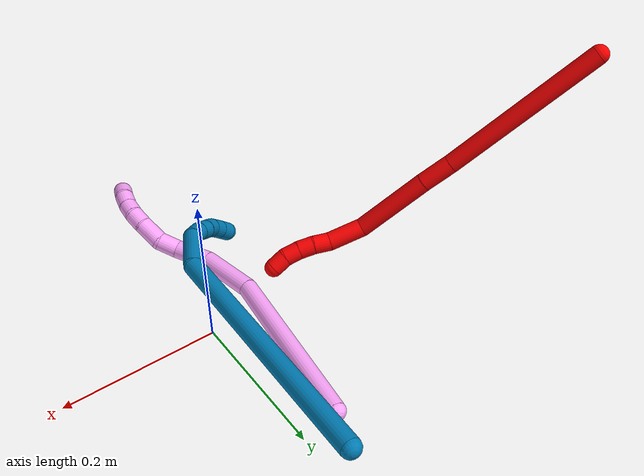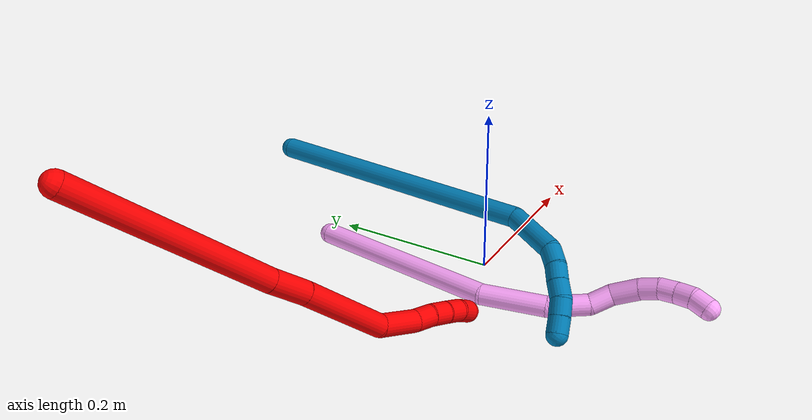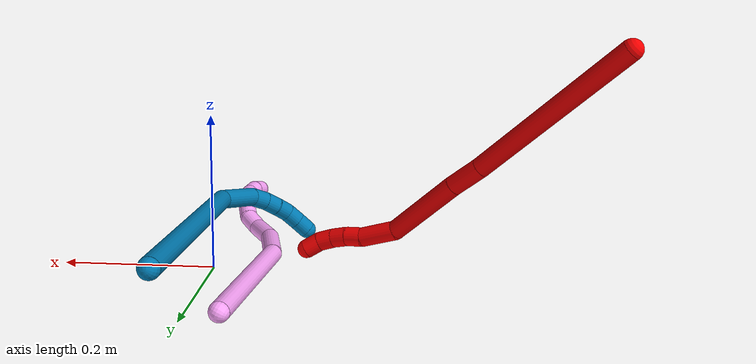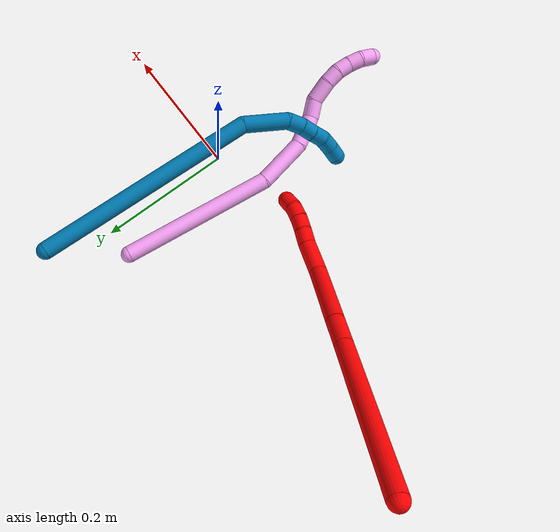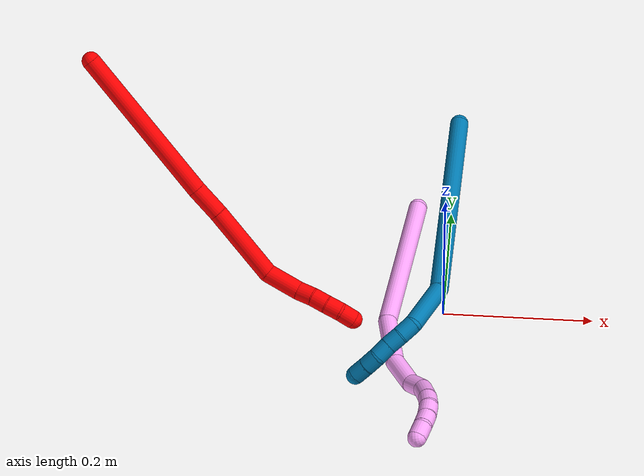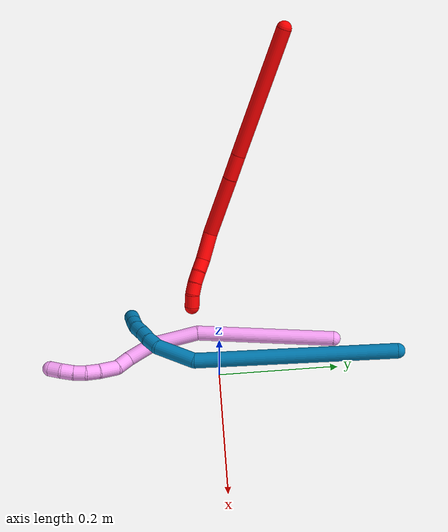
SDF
<sdf version="1.7">
 <world name="default">
  <model name="photoneo_s_sensor">
   <static>1</static>
   <pose>0 0 2 1.57079 1.57079 3.14159</pose>
   <link name="link">
    <inertial><mass>0.1</mass></inertial>
    <sensor name="sensor" type="depth">
     <update_rate>30</update_rate>
     <camera>
      <horizontal_fov>1.22</horizontal_fov>
      <image><width>1920</width><height>1200</height><format>B8G8R8</format></image>
      <clip><near>0.1</near><far>4</far></clip>
      <depth_camera><output>points</output></depth_camera>
     </camera>
     <plugin name="camera_plugin" filename="libgazebo_ros_depth_camera.so">
      <baseline>0.2</baseline>
      <alwaysOn>1</alwaysOn>
      <updateRate>0.0</updateRate>
      <cameraName>camera_ir</cameraName>
      <imageTopicName>/camera/color/image_raw</imageTopicName>
      <cameraInfoTopicName>/camera/color/camera_info</cameraInfoTopicName>
      <depthImageTopicName>/camera/depth/image_raw</depthImageTopicName>
      <depthImageCameraInfoTopicName>/camera/depth/camera_info</depthImageCameraInfoTopicName>
      <pointCloudTopicName>/camera/depth/points</pointCloudTopicName>
      <frameName>fr_optical</frameName>
      <pointCloudCutoff>0.1</pointCloudCutoff>
      <pointCloudCutoffMax>2.0</pointCloudCutoffMax>
      <distortionK1>0</distortionK1>
      <distortionK2>0</distortionK2>
      <distortionK3>0</distortionK3>
      <distortionT1>0</distortionT1>
      <distortionT2>0</distortionT2>
      <CxPrime>0</CxPrime>
      <Cx>0</Cx>
      <Cy>0</Cy>
      <focalLength>0</focalLength>
      <hackBaseline>0</hackBaseline>
     </plugin>
    </sensor>
   </link>
  </model>
  <model name="bin">
   <static>1</static>
   <link name="bottom">
    <collision name="collision-bottom">
     <pose>0 0 -0.01 0 -0 0</pose>
     <geometry><box><size>0.8 0.6 0.02</size></box></geometry>
     <surface>
      <friction><ode><mu>100</mu><mu2>100</mu2></ode></friction>
      <contact><collide_bitmask>65535</collide_bitmask></contact>
     </surface>
    </collision>
   </link>
   <link name="west_wall">
    <collision name="collision-west_wall">
     <pose>-0.41 0 0.1 0 -0 0</pose>
     <geometry><box><size>0.02 0.6 0.2</size></box></geometry>
     <surface>
      <friction><ode><mu>100</mu><mu2>100</mu2></ode></friction>
      <contact><collide_bitmask>65535</collide_bitmask></contact>
     </surface>
    </collision>
   </link>
   <link name="east_wall">
    <collision name="collision-east_wall">
     <pose>0.41 0 0.1 0 -0 0</pose>
     <geometry><box><size>0.02 0.6 0.2</size></box></geometry>
     <surface>
      <friction><ode><mu>100</mu><mu2>100</mu2></ode></friction>
      <contact><collide_bitmask>65535</collide_bitmask></contact>
     </surface>
    </collision>
   </link>
   <link name="south_wall">
    <collision name="collision-south_wall">
     <pose>0 -0.31 0.1 0 -0 0</pose>
     <geometry><box><size>0.8 0.02 0.2</size></box></geometry>
     <surface>
      <friction><ode><mu>100</mu><mu2>100</mu2></ode></friction>
      <contact><collide_bitmask>65535</collide_bitmask></contact>
     </surface>
    </collision>
   </link>
   <link name="north_wall">
    <collision name="collision-north_wall">
     <pose>0 0.31 0.1 0 -0 0</pose>
     <geometry><box><size>0.8 0.02 0.2</size></box></geometry>
     <surface>
      <friction><ode><mu>100</mu><mu2>100</mu2></ode></friction>
      <contact><collide_bitmask>65535</collide_bitmask></contact>
     </surface>
    </collision>
   </link>
  </model>
  <model name="2">
   <static>0</static>
   <link name="2">
    <collision name="collision-cylinder-e_1_1_4">
     <pose>0.000165 -3.2e-05 -0.110597 3.1413 0.00149 2.75802</pose>
     <geometry><cylinder><radius>0.0125</radius><length>0.221195</length></cylinder></geometry>
     <surface>
      <friction><ode><mu>1.16</mu><mu2>1.16</mu2><slip1>0</slip1><slip2>0</slip2></ode></friction>
      <contact><ode><kp>1e+06</kp><kd>1</kd><max_vel>0</max_vel><min_depth>0.001</min_depth></ode></contact>
     </surface>
    </collision>
    <visual name="visual-cylinder-e_1_1_4">
     <pose>0.000165 -3.2e-05 -0.110597 3.1413 0.00149 2.75802</pose>
     <geometry><cylinder><radius>0.0125</radius><length>0.221195</length></cylinder></geometry>
     <material><ambient>1 0 0 1</ambient></material>
    </visual>
    <collision name="collision-cylinder-e_2_4_5">
     <pose>0.001289 -0.001147 -0.242549 3.09092 0.044843 1.44883</pose>
     <geometry><cylinder><radius>0.0125</radius><length>0.042808</length></cylinder></geometry>
     <surface>
      <friction><ode><mu>1.16</mu><mu2>1.16</mu2><slip1>0</slip1><slip2>0</slip2></ode></friction>
      <contact><ode><kp>1e+06</kp><kd>1</kd><max_vel>0</max_vel><min_depth>0.001</min_depth></ode></contact>
     </surface>
    </collision>
    <visual name="visual-cylinder-e_2_4_5">
     <pose>0.001289 -0.001147 -0.242549 3.09092 0.044843 1.44883</pose>
     <geometry><cylinder><radius>0.0125</radius><length>0.042808</length></cylinder></geometry>
     <material><ambient>1 0 0 1</ambient></material>
    </visual>
    <collision name="collision-cylinder-e_3_5_6">
     <pose>0.002516 -0.002469 -0.316014 3.13701 0.005136 1.68363</pose>
     <geometry><cylinder><radius>0.0125</radius><length>0.104222</length></cylinder></geometry>
     <surface>
      <friction><ode><mu>1.16</mu><mu2>1.16</mu2><slip1>0</slip1><slip2>0</slip2></ode></friction>
      <contact><ode><kp>1e+06</kp><kd>1</kd><max_vel>0</max_vel><min_depth>0.001</min_depth></ode></contact>
     </surface>
    </collision>
    <visual name="visual-cylinder-e_3_5_6">
     <pose>0.002516 -0.002469 -0.316014 3.13701 0.005136 1.68363</pose>
     <geometry><cylinder><radius>0.0125</radius><length>0.104222</length></cylinder></geometry>
     <material><ambient>1 0 0 1</ambient></material>
    </visual>
    <collision name="collision-cylinder-e_4_6_7">
     <pose>0.009808 -0.009722 -0.389852 2.82933 0.298461 1.5249</pose>
     <geometry><cylinder><radius>0.0125</radius><length>0.047777</length></cylinder></geometry>
     <surface>
      <friction><ode><mu>1.16</mu><mu2>1.16</mu2><slip1>0</slip1><slip2>0</slip2></ode></friction>
      <contact><ode><kp>1e+06</kp><kd>1</kd><max_vel>0</max_vel><min_depth>0.001</min_depth></ode></contact>
     </surface>
    </collision>
    <visual name="visual-cylinder-e_4_6_7">
     <pose>0.009808 -0.009722 -0.389852 2.82933 0.298461 1.5249</pose>
     <geometry><cylinder><radius>0.0125</radius><length>0.047777</length></cylinder></geometry>
     <material><ambient>1 0 0 1</ambient></material>
    </visual>
    <collision name="collision-cylinder-e_5_7_8">
     <pose>0.02054 -0.022114 -0.420393 2.59374 0.344787 1.10952</pose>
     <geometry><cylinder><radius>0.0125</radius><length>0.021938</length></cylinder></geometry>
     <surface>
      <friction><ode><mu>1.16</mu><mu2>1.16</mu2><slip1>0</slip1><slip2>0</slip2></ode></friction>
      <contact><ode><kp>1e+06</kp><kd>1</kd><max_vel>0</max_vel><min_depth>0.001</min_depth></ode></contact>
     </surface>
    </collision>
    <visual name="visual-cylinder-e_5_7_8">
     <pose>0.02054 -0.022114 -0.420393 2.59374 0.344787 1.10952</pose>
     <geometry><cylinder><radius>0.0125</radius><length>0.021938</length></cylinder></geometry>
     <material><ambient>1 0 0 1</ambient></material>
    </visual>
    <collision name="collision-cylinder-e_6_8_9">
     <pose>0.027175 -0.031236 -0.438207 2.74734 0.291647 1.26812</pose>
     <geometry><cylinder><radius>0.0125</radius><length>0.020358</length></cylinder></geometry>
     <surface>
      <friction><ode><mu>1.16</mu><mu2>1.16</mu2><slip1>0</slip1><slip2>0</slip2></ode></friction>
      <contact><ode><kp>1e+06</kp><kd>1</kd><max_vel>0</max_vel><min_depth>0.001</min_depth></ode></contact>
     </surface>
    </collision>
    <visual name="visual-cylinder-e_6_8_9">
     <pose>0.027175 -0.031236 -0.438207 2.74734 0.291647 1.26812</pose>
     <geometry><cylinder><radius>0.0125</radius><length>0.020358</length></cylinder></geometry>
     <material><ambient>1 0 0 1</ambient></material>
    </visual>
    <collision name="collision-cylinder-e_7_9_10">
     <pose>0.033616 -0.037515 -0.456555 2.87683 0.348121 1.8453</pose>
     <geometry><cylinder><radius>0.0125</radius><length>0.020605</length></cylinder></geometry>
     <surface>
      <friction><ode><mu>1.16</mu><mu2>1.16</mu2><slip1>0</slip1><slip2>0</slip2></ode></friction>
      <contact><ode><kp>1e+06</kp><kd>1</kd><max_vel>0</max_vel><min_depth>0.001</min_depth></ode></contact>
     </surface>
    </collision>
    <visual name="visual-cylinder-e_7_9_10">
     <pose>0.033616 -0.037515 -0.456555 2.87683 0.348121 1.8453</pose>
     <geometry><cylinder><radius>0.0125</radius><length>0.020605</length></cylinder></geometry>
     <material><ambient>1 0 0 1</ambient></material>
    </visual>
    <collision name="collision-cylinder-e_8_10_2">
     <pose>0.040758 -0.039735 -0.475802 -3.1099 0.351065 -2.96334</pose>
     <geometry><cylinder><radius>0.0125</radius><length>0.021098</length></cylinder></geometry>
     <surface>
      <friction><ode><mu>1.16</mu><mu2>1.16</mu2><slip1>0</slip1><slip2>0</slip2></ode></friction>
      <contact><ode><kp>1e+06</kp><kd>1</kd><max_vel>0</max_vel><min_depth>0.001</min_depth></ode></contact>
     </surface>
    </collision>
    <visual name="visual-cylinder-e_8_10_2">
     <pose>0.040758 -0.039735 -0.475802 -3.1099 0.351065 -2.96334</pose>
     <geometry><cylinder><radius>0.0125</radius><length>0.021098</length></cylinder></geometry>
     <material><ambient>1 0 0 1</ambient></material>
    </visual>
    <collision name="collision-sphere-2">
     <pose>0.044386 -0.039422 -0.485703 0 -0 0</pose>
     <geometry><sphere><radius>0.0125</radius></sphere></geometry>
     <surface>
      <friction><ode><mu>1.16</mu><mu2>1.16</mu2><slip1>0</slip1><slip2>0</slip2></ode></friction>
      <contact><ode><kp>1e+06</kp><kd>1</kd><max_vel>0</max_vel><min_depth>0.001</min_depth></ode></contact>
     </surface>
    </collision>
    <visual name="visual-sphere-2">
     <pose>0.044386 -0.039422 -0.485703 0 -0 0</pose>
     <geometry><sphere><radius>0.0125</radius></sphere></geometry>
     <material><ambient>1 0 0 1</ambient></material>
    </visual>
    <collision name="collision-sphere-10">
     <pose>0.03713 -0.040049 -0.465902 0 -0 0</pose>
     <geometry><sphere><radius>0.0125</radius></sphere></geometry>
     <surface>
      <friction><ode><mu>1.16</mu><mu2>1.16</mu2><slip1>0</slip1><slip2>0</slip2></ode></friction>
      <contact><ode><kp>1e+06</kp><kd>1</kd><max_vel>0</max_vel><min_depth>0.001</min_depth></ode></contact>
     </surface>
    </collision>
    <visual name="visual-sphere-10">
     <pose>0.03713 -0.040049 -0.465902 0 -0 0</pose>
     <geometry><sphere><radius>0.0125</radius></sphere></geometry>
     <material><ambient>1 0 0 1</ambient></material>
    </visual>
    <collision name="collision-sphere-9">
     <pose>0.030101 -0.034981 -0.447208 0 -0 0</pose>
     <geometry><sphere><radius>0.0125</radius></sphere></geometry>
     <surface>
      <friction><ode><mu>1.16</mu><mu2>1.16</mu2><slip1>0</slip1><slip2>0</slip2></ode></friction>
      <contact><ode><kp>1e+06</kp><kd>1</kd><max_vel>0</max_vel><min_depth>0.001</min_depth></ode></contact>
     </surface>
    </collision>
    <visual name="visual-sphere-9">
     <pose>0.030101 -0.034981 -0.447208 0 -0 0</pose>
     <geometry><sphere><radius>0.0125</radius></sphere></geometry>
     <material><ambient>1 0 0 1</ambient></material>
    </visual>
    <collision name="collision-sphere-4">
     <pose>0.00033 -6.4e-05 -0.221194 0 -0 0</pose>
     <geometry><sphere><radius>0.0125</radius></sphere></geometry>
     <surface>
      <friction><ode><mu>1.16</mu><mu2>1.16</mu2><slip1>0</slip1><slip2>0</slip2></ode></friction>
      <contact><ode><kp>1e+06</kp><kd>1</kd><max_vel>0</max_vel><min_depth>0.001</min_depth></ode></contact>
     </surface>
    </collision>
    <visual name="visual-sphere-4">
     <pose>0.00033 -6.4e-05 -0.221194 0 -0 0</pose>
     <geometry><sphere><radius>0.0125</radius></sphere></geometry>
     <material><ambient>1 0 0 1</ambient></material>
    </visual>
    <collision name="collision-sphere-1">
     <geometry><sphere><radius>0.0125</radius></sphere></geometry>
     <surface>
      <friction><ode><mu>1.16</mu><mu2>1.16</mu2><slip1>0</slip1><slip2>0</slip2></ode></friction>
      <contact><ode><kp>1e+06</kp><kd>1</kd><max_vel>0</max_vel><min_depth>0.001</min_depth></ode></contact>
     </surface>
    </collision>
    <visual name="visual-sphere-1">
     <geometry><sphere><radius>0.0125</radius></sphere></geometry>
     <material><ambient>1 0 0 1</ambient></material>
    </visual>
    <collision name="collision-sphere-8">
     <pose>0.024248 -0.027491 -0.429205 0 -0 0</pose>
     <geometry><sphere><radius>0.0125</radius></sphere></geometry>
     <surface>
      <friction><ode><mu>1.16</mu><mu2>1.16</mu2><slip1>0</slip1><slip2>0</slip2></ode></friction>
      <contact><ode><kp>1e+06</kp><kd>1</kd><max_vel>0</max_vel><min_depth>0.001</min_depth></ode></contact>
     </surface>
    </collision>
    <visual name="visual-sphere-8">
     <pose>0.024248 -0.027491 -0.429205 0 -0 0</pose>
     <geometry><sphere><radius>0.0125</radius></sphere></geometry>
     <material><ambient>1 0 0 1</ambient></material>
    </visual>
    <collision name="collision-sphere-5">
     <pose>0.002249 -0.00223 -0.263905 0 -0 0</pose>
     <geometry><sphere><radius>0.0125</radius></sphere></geometry>
     <surface>
      <friction><ode><mu>1.16</mu><mu2>1.16</mu2><slip1>0</slip1><slip2>0</slip2></ode></friction>
      <contact><ode><kp>1e+06</kp><kd>1</kd><max_vel>0</max_vel><min_depth>0.001</min_depth></ode></contact>
     </surface>
    </collision>
    <visual name="visual-sphere-5">
     <pose>0.002249 -0.00223 -0.263905 0 -0 0</pose>
     <geometry><sphere><radius>0.0125</radius></sphere></geometry>
     <material><ambient>1 0 0 1</ambient></material>
    </visual>
    <collision name="collision-sphere-6">
     <pose>0.002784 -0.002708 -0.368124 0 -0 0</pose>
     <geometry><sphere><radius>0.0125</radius></sphere></geometry>
     <surface>
      <friction><ode><mu>1.16</mu><mu2>1.16</mu2><slip1>0</slip1><slip2>0</slip2></ode></friction>
      <contact><ode><kp>1e+06</kp><kd>1</kd><max_vel>0</max_vel><min_depth>0.001</min_depth></ode></contact>
     </surface>
    </collision>
    <visual name="visual-sphere-6">
     <pose>0.002784 -0.002708 -0.368124 0 -0 0</pose>
     <geometry><sphere><radius>0.0125</radius></sphere></geometry>
     <material><ambient>1 0 0 1</ambient></material>
    </visual>
    <collision name="collision-sphere-7">
     <pose>0.016833 -0.016737 -0.41158 0 -0 0</pose>
     <geometry><sphere><radius>0.0125</radius></sphere></geometry>
     <surface>
      <friction><ode><mu>1.16</mu><mu2>1.16</mu2><slip1>0</slip1><slip2>0</slip2></ode></friction>
      <contact><ode><kp>1e+06</kp><kd>1</kd><max_vel>0</max_vel><min_depth>0.001</min_depth></ode></contact>
     </surface>
    </collision>
    <visual name="visual-sphere-7">
     <pose>0.016833 -0.016737 -0.41158 0 -0 0</pose>
     <geometry><sphere><radius>0.0125</radius></sphere></geometry>
     <material><ambient>1 0 0 1</ambient></material>
    </visual>
    <inertial>
     <pose>0.006758 -0.007021 -0.247994 0 -0 0</pose>
     <mass>0.5</mass>
     <inertia>
      <ixx>-0.00039</ixx>
      <ixy>0</ixy>
      <ixz>0</ixz>
      <iyy>0.001314</iyy>
      <iyz>0</iyz>
      <izz>-3.9e-05</izz>
     </inertia>
    </inertial>
   </link>
   <pose>-0.479327 0.137658 0.297144 -0.805916 -0.311049 0.769301</pose>
  </model>
  <model name="4">
   <static>0</static>
   <link name="4">
    <collision name="collision-cylinder-e_1_1_4">
     <pose>0.037307 -0.108897 0.007901 1.49837 0.329257 0.306606</pose>
     <geometry><cylinder><radius>0.0125</radius><length>0.230762</length></cylinder></geometry>
     <surface>
      <friction><ode><mu>1.16</mu><mu2>1.16</mu2><slip1>0</slip1><slip2>0</slip2></ode></friction>
      <contact><ode><kp>1e+06</kp><kd>1</kd><max_vel>0</max_vel><min_depth>0.001</min_depth></ode></contact>
     </surface>
    </collision>
    <visual name="visual-cylinder-e_1_1_4">
     <pose>0.037307 -0.108897 0.007901 1.49837 0.329257 0.306606</pose>
     <geometry><cylinder><radius>0.0125</radius><length>0.230762</length></cylinder></geometry>
     <material><ambient>1 0.65098 0.996078 1</ambient></material>
    </visual>
    <collision name="collision-cylinder-e_2_4_5">
     <pose>0.09077 -0.250756 0.029082 1.18781 0.426674 0.290493</pose>
     <geometry><cylinder><radius>0.0125</radius><length>0.078072</length></cylinder></geometry>
     <surface>
      <friction><ode><mu>1.16</mu><mu2>1.16</mu2><slip1>0</slip1><slip2>0</slip2></ode></friction>
      <contact><ode><kp>1e+06</kp><kd>1</kd><max_vel>0</max_vel><min_depth>0.001</min_depth></ode></contact>
     </surface>
    </collision>
    <visual name="visual-cylinder-e_2_4_5">
     <pose>0.09077 -0.250756 0.029082 1.18781 0.426674 0.290493</pose>
     <geometry><cylinder><radius>0.0125</radius><length>0.078072</length></cylinder></geometry>
     <material><ambient>1 0.65098 0.996078 1</ambient></material>
    </visual>
    <collision name="collision-cylinder-e_3_5_6">
     <pose>0.117039 -0.299804 0.05728 0.823022 0.431984 0.190936</pose>
     <geometry><cylinder><radius>0.0125</radius><length>0.048318</length></cylinder></geometry>
     <surface>
      <friction><ode><mu>1.16</mu><mu2>1.16</mu2><slip1>0</slip1><slip2>0</slip2></ode></friction>
      <contact><ode><kp>1e+06</kp><kd>1</kd><max_vel>0</max_vel><min_depth>0.001</min_depth></ode></contact>
     </surface>
    </collision>
    <visual name="visual-cylinder-e_3_5_6">
     <pose>0.117039 -0.299804 0.05728 0.823022 0.431984 0.190936</pose>
     <geometry><cylinder><radius>0.0125</radius><length>0.048318</length></cylinder></geometry>
     <material><ambient>1 0.65098 0.996078 1</ambient></material>
    </visual>
    <collision name="collision-cylinder-e_4_6_7">
     <pose>0.12888 -0.323523 0.083311 0.601854 0.12736 0.039575</pose>
     <geometry><cylinder><radius>0.0125</radius><length>0.027182</length></cylinder></geometry>
     <surface>
      <friction><ode><mu>1.16</mu><mu2>1.16</mu2><slip1>0</slip1><slip2>0</slip2></ode></friction>
      <contact><ode><kp>1e+06</kp><kd>1</kd><max_vel>0</max_vel><min_depth>0.001</min_depth></ode></contact>
     </surface>
    </collision>
    <visual name="visual-cylinder-e_4_6_7">
     <pose>0.12888 -0.323523 0.083311 0.601854 0.12736 0.039575</pose>
     <geometry><cylinder><radius>0.0125</radius><length>0.027182</length></cylinder></geometry>
     <material><ambient>1 0.65098 0.996078 1</ambient></material>
    </visual>
    <collision name="collision-cylinder-e_5_7_8">
     <pose>0.131534 -0.345092 0.103181 1.00978 0.056318 0.031131</pose>
     <geometry><cylinder><radius>0.0125</radius><length>0.032973</length></cylinder></geometry>
     <surface>
      <friction><ode><mu>1.16</mu><mu2>1.16</mu2><slip1>0</slip1><slip2>0</slip2></ode></friction>
      <contact><ode><kp>1e+06</kp><kd>1</kd><max_vel>0</max_vel><min_depth>0.001</min_depth></ode></contact>
     </surface>
    </collision>
    <visual name="visual-cylinder-e_5_7_8">
     <pose>0.131534 -0.345092 0.103181 1.00978 0.056318 0.031131</pose>
     <geometry><cylinder><radius>0.0125</radius><length>0.032973</length></cylinder></geometry>
     <material><ambient>1 0.65098 0.996078 1</ambient></material>
    </visual>
    <collision name="collision-cylinder-e_6_8_9">
     <pose>0.134122 -0.369119 0.116274 1.16495 0.150026 0.098928</pose>
     <geometry><cylinder><radius>0.0125</radius><length>0.022211</length></cylinder></geometry>
     <surface>
      <friction><ode><mu>1.16</mu><mu2>1.16</mu2><slip1>0</slip1><slip2>0</slip2></ode></friction>
      <contact><ode><kp>1e+06</kp><kd>1</kd><max_vel>0</max_vel><min_depth>0.001</min_depth></ode></contact>
     </surface>
    </collision>
    <visual name="visual-cylinder-e_6_8_9">
     <pose>0.134122 -0.369119 0.116274 1.16495 0.150026 0.098928</pose>
     <geometry><cylinder><radius>0.0125</radius><length>0.022211</length></cylinder></geometry>
     <material><ambient>1 0.65098 0.996078 1</ambient></material>
    </visual>
    <collision name="collision-cylinder-e_7_9_10">
     <pose>0.138471 -0.388729 0.122079 1.41772 0.272141 0.233754</pose>
     <geometry><cylinder><radius>0.0125</radius><length>0.020005</length></cylinder></geometry>
     <surface>
      <friction><ode><mu>1.16</mu><mu2>1.16</mu2><slip1>0</slip1><slip2>0</slip2></ode></friction>
      <contact><ode><kp>1e+06</kp><kd>1</kd><max_vel>0</max_vel><min_depth>0.001</min_depth></ode></contact>
     </surface>
    </collision>
    <visual name="visual-cylinder-e_7_9_10">
     <pose>0.138471 -0.388729 0.122079 1.41772 0.272141 0.233754</pose>
     <geometry><cylinder><radius>0.0125</radius><length>0.020005</length></cylinder></geometry>
     <material><ambient>1 0.65098 0.996078 1</ambient></material>
    </visual>
    <collision name="collision-cylinder-e_8_10_11">
     <pose>0.143275 -0.408149 0.123786 1.5467 0.210464 0.205488</pose>
     <geometry><cylinder><radius>0.0125</radius><length>0.02025</length></cylinder></geometry>
     <surface>
      <friction><ode><mu>1.16</mu><mu2>1.16</mu2><slip1>0</slip1><slip2>0</slip2></ode></friction>
      <contact><ode><kp>1e+06</kp><kd>1</kd><max_vel>0</max_vel><min_depth>0.001</min_depth></ode></contact>
     </surface>
    </collision>
    <visual name="visual-cylinder-e_8_10_11">
     <pose>0.143275 -0.408149 0.123786 1.5467 0.210464 0.205488</pose>
     <geometry><cylinder><radius>0.0125</radius><length>0.02025</length></cylinder></geometry>
     <material><ambient>1 0.65098 0.996078 1</ambient></material>
    </visual>
    <collision name="collision-cylinder-e_9_11_2">
     <pose>0.149509 -0.427079 0.122089 1.78191 0.419549 0.515043</pose>
     <geometry><cylinder><radius>0.0125</radius><length>0.020226</length></cylinder></geometry>
     <surface>
      <friction><ode><mu>1.16</mu><mu2>1.16</mu2><slip1>0</slip1><slip2>0</slip2></ode></friction>
      <contact><ode><kp>1e+06</kp><kd>1</kd><max_vel>0</max_vel><min_depth>0.001</min_depth></ode></contact>
     </surface>
    </collision>
    <visual name="visual-cylinder-e_9_11_2">
     <pose>0.149509 -0.427079 0.122089 1.78191 0.419549 0.515043</pose>
     <geometry><cylinder><radius>0.0125</radius><length>0.020226</length></cylinder></geometry>
     <material><ambient>1 0.65098 0.996078 1</ambient></material>
    </visual>
    <collision name="collision-sphere-2">
     <pose>0.153629 -0.43611 0.120154 0 -0 0</pose>
     <geometry><sphere><radius>0.0125</radius></sphere></geometry>
     <surface>
      <friction><ode><mu>1.16</mu><mu2>1.16</mu2><slip1>0</slip1><slip2>0</slip2></ode></friction>
      <contact><ode><kp>1e+06</kp><kd>1</kd><max_vel>0</max_vel><min_depth>0.001</min_depth></ode></contact>
     </surface>
    </collision>
    <visual name="visual-sphere-2">
     <pose>0.153629 -0.43611 0.120154 0 -0 0</pose>
     <geometry><sphere><radius>0.0125</radius></sphere></geometry>
     <material><ambient>1 0.65098 0.996078 1</ambient></material>
    </visual>
    <collision name="collision-sphere-11">
     <pose>0.14539 -0.418048 0.124025 0 -0 0</pose>
     <geometry><sphere><radius>0.0125</radius></sphere></geometry>
     <surface>
      <friction><ode><mu>1.16</mu><mu2>1.16</mu2><slip1>0</slip1><slip2>0</slip2></ode></friction>
      <contact><ode><kp>1e+06</kp><kd>1</kd><max_vel>0</max_vel><min_depth>0.001</min_depth></ode></contact>
     </surface>
    </collision>
    <visual name="visual-sphere-11">
     <pose>0.14539 -0.418048 0.124025 0 -0 0</pose>
     <geometry><sphere><radius>0.0125</radius></sphere></geometry>
     <material><ambient>1 0.65098 0.996078 1</ambient></material>
    </visual>
    <collision name="collision-sphere-10">
     <pose>0.141159 -0.398251 0.123548 0 -0 0</pose>
     <geometry><sphere><radius>0.0125</radius></sphere></geometry>
     <surface>
      <friction><ode><mu>1.16</mu><mu2>1.16</mu2><slip1>0</slip1><slip2>0</slip2></ode></friction>
      <contact><ode><kp>1e+06</kp><kd>1</kd><max_vel>0</max_vel><min_depth>0.001</min_depth></ode></contact>
     </surface>
    </collision>
    <visual name="visual-sphere-10">
     <pose>0.141159 -0.398251 0.123548 0 -0 0</pose>
     <geometry><sphere><radius>0.0125</radius></sphere></geometry>
     <material><ambient>1 0.65098 0.996078 1</ambient></material>
    </visual>
    <collision name="collision-sphere-9">
     <pose>0.135782 -0.379207 0.120609 0 -0 0</pose>
     <geometry><sphere><radius>0.0125</radius></sphere></geometry>
     <surface>
      <friction><ode><mu>1.16</mu><mu2>1.16</mu2><slip1>0</slip1><slip2>0</slip2></ode></friction>
      <contact><ode><kp>1e+06</kp><kd>1</kd><max_vel>0</max_vel><min_depth>0.001</min_depth></ode></contact>
     </surface>
    </collision>
    <visual name="visual-sphere-9">
     <pose>0.135782 -0.379207 0.120609 0 -0 0</pose>
     <geometry><sphere><radius>0.0125</radius></sphere></geometry>
     <material><ambient>1 0.65098 0.996078 1</ambient></material>
    </visual>
    <collision name="collision-sphere-4">
     <pose>0.074615 -0.217794 0.015802 0 -0 0</pose>
     <geometry><sphere><radius>0.0125</radius></sphere></geometry>
     <surface>
      <friction><ode><mu>1.16</mu><mu2>1.16</mu2><slip1>0</slip1><slip2>0</slip2></ode></friction>
      <contact><ode><kp>1e+06</kp><kd>1</kd><max_vel>0</max_vel><min_depth>0.001</min_depth></ode></contact>
     </surface>
    </collision>
    <visual name="visual-sphere-4">
     <pose>0.074615 -0.217794 0.015802 0 -0 0</pose>
     <geometry><sphere><radius>0.0125</radius></sphere></geometry>
     <material><ambient>1 0.65098 0.996078 1</ambient></material>
    </visual>
    <collision name="collision-sphere-1">
     <geometry><sphere><radius>0.0125</radius></sphere></geometry>
     <surface>
      <friction><ode><mu>1.16</mu><mu2>1.16</mu2><slip1>0</slip1><slip2>0</slip2></ode></friction>
      <contact><ode><kp>1e+06</kp><kd>1</kd><max_vel>0</max_vel><min_depth>0.001</min_depth></ode></contact>
     </surface>
    </collision>
    <visual name="visual-sphere-1">
     <geometry><sphere><radius>0.0125</radius></sphere></geometry>
     <material><ambient>1 0.65098 0.996078 1</ambient></material>
    </visual>
    <collision name="collision-sphere-8">
     <pose>0.132462 -0.35903 0.111939 0 -0 0</pose>
     <geometry><sphere><radius>0.0125</radius></sphere></geometry>
     <surface>
      <friction><ode><mu>1.16</mu><mu2>1.16</mu2><slip1>0</slip1><slip2>0</slip2></ode></friction>
      <contact><ode><kp>1e+06</kp><kd>1</kd><max_vel>0</max_vel><min_depth>0.001</min_depth></ode></contact>
     </surface>
    </collision>
    <visual name="visual-sphere-8">
     <pose>0.132462 -0.35903 0.111939 0 -0 0</pose>
     <geometry><sphere><radius>0.0125</radius></sphere></geometry>
     <material><ambient>1 0.65098 0.996078 1</ambient></material>
    </visual>
    <collision name="collision-sphere-5">
     <pose>0.106925 -0.283718 0.042361 0 -0 0</pose>
     <geometry><sphere><radius>0.0125</radius></sphere></geometry>
     <surface>
      <friction><ode><mu>1.16</mu><mu2>1.16</mu2><slip1>0</slip1><slip2>0</slip2></ode></friction>
      <contact><ode><kp>1e+06</kp><kd>1</kd><max_vel>0</max_vel><min_depth>0.001</min_depth></ode></contact>
     </surface>
    </collision>
    <visual name="visual-sphere-5">
     <pose>0.106925 -0.283718 0.042361 0 -0 0</pose>
     <geometry><sphere><radius>0.0125</radius></sphere></geometry>
     <material><ambient>1 0.65098 0.996078 1</ambient></material>
    </visual>
    <collision name="collision-sphere-6">
     <pose>0.127154 -0.31589 0.072199 0 -0 0</pose>
     <geometry><sphere><radius>0.0125</radius></sphere></geometry>
     <surface>
      <friction><ode><mu>1.16</mu><mu2>1.16</mu2><slip1>0</slip1><slip2>0</slip2></ode></friction>
      <contact><ode><kp>1e+06</kp><kd>1</kd><max_vel>0</max_vel><min_depth>0.001</min_depth></ode></contact>
     </surface>
    </collision>
    <visual name="visual-sphere-6">
     <pose>0.127154 -0.31589 0.072199 0 -0 0</pose>
     <geometry><sphere><radius>0.0125</radius></sphere></geometry>
     <material><ambient>1 0.65098 0.996078 1</ambient></material>
    </visual>
    <collision name="collision-sphere-7">
     <pose>0.130606 -0.331155 0.094424 0 -0 0</pose>
     <geometry><sphere><radius>0.0125</radius></sphere></geometry>
     <surface>
      <friction><ode><mu>1.16</mu><mu2>1.16</mu2><slip1>0</slip1><slip2>0</slip2></ode></friction>
      <contact><ode><kp>1e+06</kp><kd>1</kd><max_vel>0</max_vel><min_depth>0.001</min_depth></ode></contact>
     </surface>
    </collision>
    <visual name="visual-sphere-7">
     <pose>0.130606 -0.331155 0.094424 0 -0 0</pose>
     <geometry><sphere><radius>0.0125</radius></sphere></geometry>
     <material><ambient>1 0.65098 0.996078 1</ambient></material>
    </visual>
    <inertial>
     <pose>0.081731 -0.224487 0.045058 0 -0 0</pose>
     <mass>0.5</mass>
     <inertia>
      <ixx>0.001314</ixx>
      <ixy>0</ixy>
      <ixz>0</ixz>
      <iyy>0.000481</iyy>
      <iyz>0</iyz>
      <izz>0.00068</izz>
     </inertia>
    </inertial>
   </link>
   <pose>-0.046234 0.196807 0.01252 -0.580703 1.06526 -0.836361</pose>
  </model>
  <model name="9">
   <static>0</static>
   <link name="9">
    <collision name="collision-cylinder-e_1_1_4">
     <pose>0.05367 0.018828 -0.154437 -3.02027 0.332183 -2.44642</pose>
     <geometry><cylinder><radius>0.0125</radius><length>0.329154</length></cylinder></geometry>
     <surface>
      <friction><ode><mu>1.16</mu><mu2>1.16</mu2><slip1>0</slip1><slip2>0</slip2></ode></friction>
      <contact><ode><kp>1e+06</kp><kd>1</kd><max_vel>0</max_vel><min_depth>0.001</min_depth></ode></contact>
     </surface>
    </collision>
    <visual name="visual-cylinder-e_1_1_4">
     <pose>0.05367 0.018828 -0.154437 -3.02027 0.332183 -2.44642</pose>
     <geometry><cylinder><radius>0.0125</radius><length>0.329154</length></cylinder></geometry>
     <material><ambient>0 0.490196 0.709804 1</ambient></material>
    </visual>
    <collision name="collision-cylinder-e_2_4_5">
     <pose>0.109139 0.029065 -0.341197 2.8818 0.053737 0.405803</pose>
     <geometry><cylinder><radius>0.0125</radius><length>0.066989</length></cylinder></geometry>
     <surface>
      <friction><ode><mu>1.16</mu><mu2>1.16</mu2><slip1>0</slip1><slip2>0</slip2></ode></friction>
      <contact><ode><kp>1e+06</kp><kd>1</kd><max_vel>0</max_vel><min_depth>0.001</min_depth></ode></contact>
     </surface>
    </collision>
    <visual name="visual-cylinder-e_2_4_5">
     <pose>0.109139 0.029065 -0.341197 2.8818 0.053737 0.405803</pose>
     <geometry><cylinder><radius>0.0125</radius><length>0.066989</length></cylinder></geometry>
     <material><ambient>0 0.490196 0.709804 1</ambient></material>
    </visual>
    <collision name="collision-cylinder-e_3_5_6">
     <pose>0.107281 0.01546 -0.383341 2.66952 -0.320197 -1.18252</pose>
     <geometry><cylinder><radius>0.0125</radius><length>0.023233</length></cylinder></geometry>
     <surface>
      <friction><ode><mu>1.16</mu><mu2>1.16</mu2><slip1>0</slip1><slip2>0</slip2></ode></friction>
      <contact><ode><kp>1e+06</kp><kd>1</kd><max_vel>0</max_vel><min_depth>0.001</min_depth></ode></contact>
     </surface>
    </collision>
    <visual name="visual-cylinder-e_3_5_6">
     <pose>0.107281 0.01546 -0.383341 2.66952 -0.320197 -1.18252</pose>
     <geometry><cylinder><radius>0.0125</radius><length>0.023233</length></cylinder></geometry>
     <material><ambient>0 0.490196 0.709804 1</ambient></material>
    </visual>
    <collision name="collision-cylinder-e_4_6_7">
     <pose>0.098776 0.005952 -0.400757 2.60737 -0.502469 -1.50672</pose>
     <geometry><cylinder><radius>0.0125</radius><length>0.02014</length></cylinder></geometry>
     <surface>
      <friction><ode><mu>1.16</mu><mu2>1.16</mu2><slip1>0</slip1><slip2>0</slip2></ode></friction>
      <contact><ode><kp>1e+06</kp><kd>1</kd><max_vel>0</max_vel><min_depth>0.001</min_depth></ode></contact>
     </surface>
    </collision>
    <visual name="visual-cylinder-e_4_6_7">
     <pose>0.098776 0.005952 -0.400757 2.60737 -0.502469 -1.50672</pose>
     <geometry><cylinder><radius>0.0125</radius><length>0.02014</length></cylinder></geometry>
     <material><ambient>0 0.490196 0.709804 1</ambient></material>
    </visual>
    <collision name="collision-cylinder-e_5_7_8">
     <pose>0.089017 -0.002291 -0.416512 2.7108 -0.500221 -1.72514</pose>
     <geometry><cylinder><radius>0.0125</radius><length>0.02047</length></cylinder></geometry>
     <surface>
      <friction><ode><mu>1.16</mu><mu2>1.16</mu2><slip1>0</slip1><slip2>0</slip2></ode></friction>
      <contact><ode><kp>1e+06</kp><kd>1</kd><max_vel>0</max_vel><min_depth>0.001</min_depth></ode></contact>
     </surface>
    </collision>
    <visual name="visual-cylinder-e_5_7_8">
     <pose>0.089017 -0.002291 -0.416512 2.7108 -0.500221 -1.72514</pose>
     <geometry><cylinder><radius>0.0125</radius><length>0.02047</length></cylinder></geometry>
     <material><ambient>0 0.490196 0.709804 1</ambient></material>
    </visual>
    <collision name="collision-cylinder-e_6_8_9">
     <pose>0.077036 -0.009777 -0.430684 2.58563 -0.785016 -1.93456</pose>
     <geometry><cylinder><radius>0.0125</radius><length>0.020012</length></cylinder></geometry>
     <surface>
      <friction><ode><mu>1.16</mu><mu2>1.16</mu2><slip1>0</slip1><slip2>0</slip2></ode></friction>
      <contact><ode><kp>1e+06</kp><kd>1</kd><max_vel>0</max_vel><min_depth>0.001</min_depth></ode></contact>
     </surface>
    </collision>
    <visual name="visual-cylinder-e_6_8_9">
     <pose>0.077036 -0.009777 -0.430684 2.58563 -0.785016 -1.93456</pose>
     <geometry><cylinder><radius>0.0125</radius><length>0.020012</length></cylinder></geometry>
     <material><ambient>0 0.490196 0.709804 1</ambient></material>
    </visual>
    <collision name="collision-cylinder-e_7_9_2">
     <pose>0.062553 -0.017396 -0.442176 2.52502 -0.834473 -1.89566</pose>
     <geometry><cylinder><radius>0.0125</radius><length>0.020003</length></cylinder></geometry>
     <surface>
      <friction><ode><mu>1.16</mu><mu2>1.16</mu2><slip1>0</slip1><slip2>0</slip2></ode></friction>
      <contact><ode><kp>1e+06</kp><kd>1</kd><max_vel>0</max_vel><min_depth>0.001</min_depth></ode></contact>
     </surface>
    </collision>
    <visual name="visual-cylinder-e_7_9_2">
     <pose>0.062553 -0.017396 -0.442176 2.52502 -0.834473 -1.89566</pose>
     <geometry><cylinder><radius>0.0125</radius><length>0.020003</length></cylinder></geometry>
     <material><ambient>0 0.490196 0.709804 1</ambient></material>
    </visual>
    <collision name="collision-sphere-2">
     <pose>0.055142 -0.02128 -0.447656 0 -0 0</pose>
     <geometry><sphere><radius>0.0125</radius></sphere></geometry>
     <surface>
      <friction><ode><mu>1.16</mu><mu2>1.16</mu2><slip1>0</slip1><slip2>0</slip2></ode></friction>
      <contact><ode><kp>1e+06</kp><kd>1</kd><max_vel>0</max_vel><min_depth>0.001</min_depth></ode></contact>
     </surface>
    </collision>
    <visual name="visual-sphere-2">
     <pose>0.055142 -0.02128 -0.447656 0 -0 0</pose>
     <geometry><sphere><radius>0.0125</radius></sphere></geometry>
     <material><ambient>0 0.490196 0.709804 1</ambient></material>
    </visual>
    <collision name="collision-sphere-9">
     <pose>0.069964 -0.013512 -0.436696 0 -0 0</pose>
     <geometry><sphere><radius>0.0125</radius></sphere></geometry>
     <surface>
      <friction><ode><mu>1.16</mu><mu2>1.16</mu2><slip1>0</slip1><slip2>0</slip2></ode></friction>
      <contact><ode><kp>1e+06</kp><kd>1</kd><max_vel>0</max_vel><min_depth>0.001</min_depth></ode></contact>
     </surface>
    </collision>
    <visual name="visual-sphere-9">
     <pose>0.069964 -0.013512 -0.436696 0 -0 0</pose>
     <geometry><sphere><radius>0.0125</radius></sphere></geometry>
     <material><ambient>0 0.490196 0.709804 1</ambient></material>
    </visual>
    <collision name="collision-sphere-4">
     <pose>0.10734 0.037657 -0.308873 0 -0 0</pose>
     <geometry><sphere><radius>0.0125</radius></sphere></geometry>
     <surface>
      <friction><ode><mu>1.16</mu><mu2>1.16</mu2><slip1>0</slip1><slip2>0</slip2></ode></friction>
      <contact><ode><kp>1e+06</kp><kd>1</kd><max_vel>0</max_vel><min_depth>0.001</min_depth></ode></contact>
     </surface>
    </collision>
    <visual name="visual-sphere-4">
     <pose>0.10734 0.037657 -0.308873 0 -0 0</pose>
     <geometry><sphere><radius>0.0125</radius></sphere></geometry>
     <material><ambient>0 0.490196 0.709804 1</ambient></material>
    </visual>
    <collision name="collision-sphere-1">
     <geometry><sphere><radius>0.0125</radius></sphere></geometry>
     <surface>
      <friction><ode><mu>1.16</mu><mu2>1.16</mu2><slip1>0</slip1><slip2>0</slip2></ode></friction>
      <contact><ode><kp>1e+06</kp><kd>1</kd><max_vel>0</max_vel><min_depth>0.001</min_depth></ode></contact>
     </surface>
    </collision>
    <visual name="visual-sphere-1">
     <geometry><sphere><radius>0.0125</radius></sphere></geometry>
     <material><ambient>0 0.490196 0.709804 1</ambient></material>
    </visual>
    <collision name="collision-sphere-8">
     <pose>0.084108 -0.006042 -0.424673 0 -0 0</pose>
     <geometry><sphere><radius>0.0125</radius></sphere></geometry>
     <surface>
      <friction><ode><mu>1.16</mu><mu2>1.16</mu2><slip1>0</slip1><slip2>0</slip2></ode></friction>
      <contact><ode><kp>1e+06</kp><kd>1</kd><max_vel>0</max_vel><min_depth>0.001</min_depth></ode></contact>
     </surface>
    </collision>
    <visual name="visual-sphere-8">
     <pose>0.084108 -0.006042 -0.424673 0 -0 0</pose>
     <geometry><sphere><radius>0.0125</radius></sphere></geometry>
     <material><ambient>0 0.490196 0.709804 1</ambient></material>
    </visual>
    <collision name="collision-sphere-5">
     <pose>0.110938 0.020474 -0.373521 0 -0 0</pose>
     <geometry><sphere><radius>0.0125</radius></sphere></geometry>
     <surface>
      <friction><ode><mu>1.16</mu><mu2>1.16</mu2><slip1>0</slip1><slip2>0</slip2></ode></friction>
      <contact><ode><kp>1e+06</kp><kd>1</kd><max_vel>0</max_vel><min_depth>0.001</min_depth></ode></contact>
     </surface>
    </collision>
    <visual name="visual-sphere-5">
     <pose>0.110938 0.020474 -0.373521 0 -0 0</pose>
     <geometry><sphere><radius>0.0125</radius></sphere></geometry>
     <material><ambient>0 0.490196 0.709804 1</ambient></material>
    </visual>
    <collision name="collision-sphere-6">
     <pose>0.103625 0.010446 -0.393161 0 -0 0</pose>
     <geometry><sphere><radius>0.0125</radius></sphere></geometry>
     <surface>
      <friction><ode><mu>1.16</mu><mu2>1.16</mu2><slip1>0</slip1><slip2>0</slip2></ode></friction>
      <contact><ode><kp>1e+06</kp><kd>1</kd><max_vel>0</max_vel><min_depth>0.001</min_depth></ode></contact>
     </surface>
    </collision>
    <visual name="visual-sphere-6">
     <pose>0.103625 0.010446 -0.393161 0 -0 0</pose>
     <geometry><sphere><radius>0.0125</radius></sphere></geometry>
     <material><ambient>0 0.490196 0.709804 1</ambient></material>
    </visual>
    <collision name="collision-sphere-7">
     <pose>0.093926 0.001459 -0.408352 0 -0 0</pose>
     <geometry><sphere><radius>0.0125</radius></sphere></geometry>
     <surface>
      <friction><ode><mu>1.16</mu><mu2>1.16</mu2><slip1>0</slip1><slip2>0</slip2></ode></friction>
      <contact><ode><kp>1e+06</kp><kd>1</kd><max_vel>0</max_vel><min_depth>0.001</min_depth></ode></contact>
     </surface>
    </collision>
    <visual name="visual-sphere-7">
     <pose>0.093926 0.001459 -0.408352 0 -0 0</pose>
     <geometry><sphere><radius>0.0125</radius></sphere></geometry>
     <material><ambient>0 0.490196 0.709804 1</ambient></material>
    </visual>
    <inertial>
     <pose>0.068147 0.016066 -0.233313 0 -0 0</pose>
     <mass>0.5</mass>
     <inertia>
      <ixx>-0.00394</ixx>
      <ixy>0</ixy>
      <ixz>0</ixz>
      <iyy>0.000524</iyy>
      <iyz>0</iyz>
      <izz>-0.001337</izz>
     </inertia>
    </inertial>
   </link>
   <pose>0.004565 0.288504 0.089806 -0.877515 -1.09651 -0.892587</pose>
  </model>
 </world>
</sdf>
